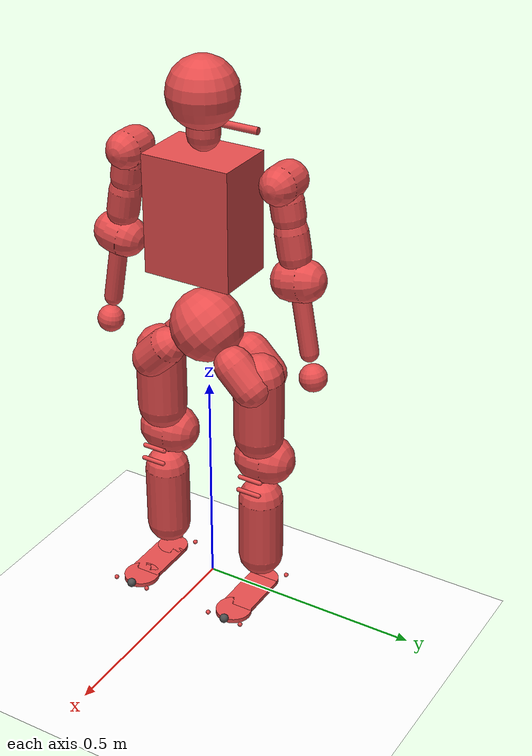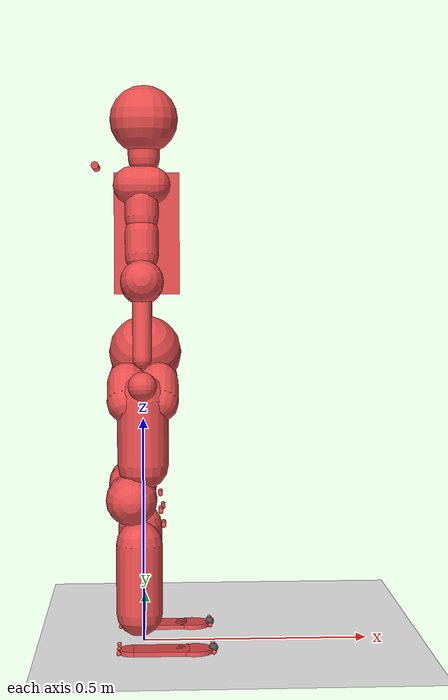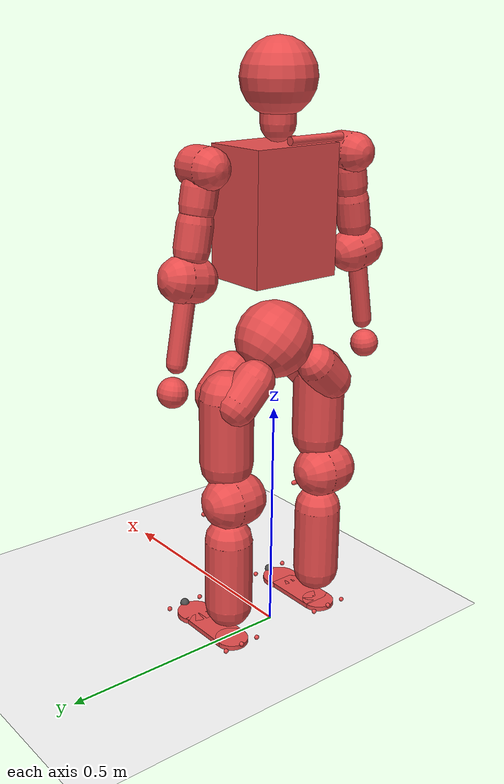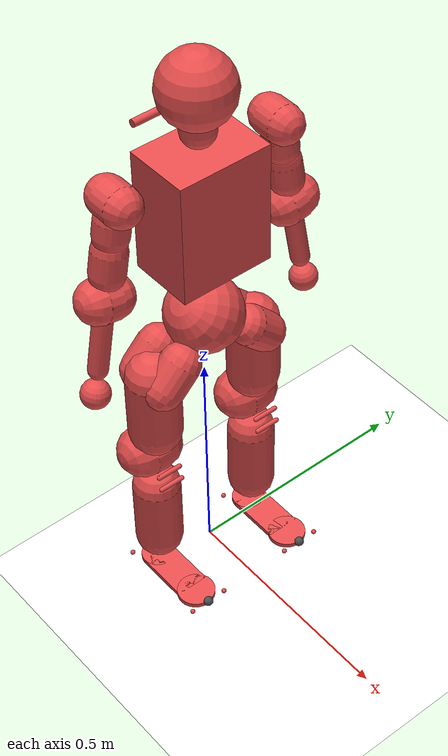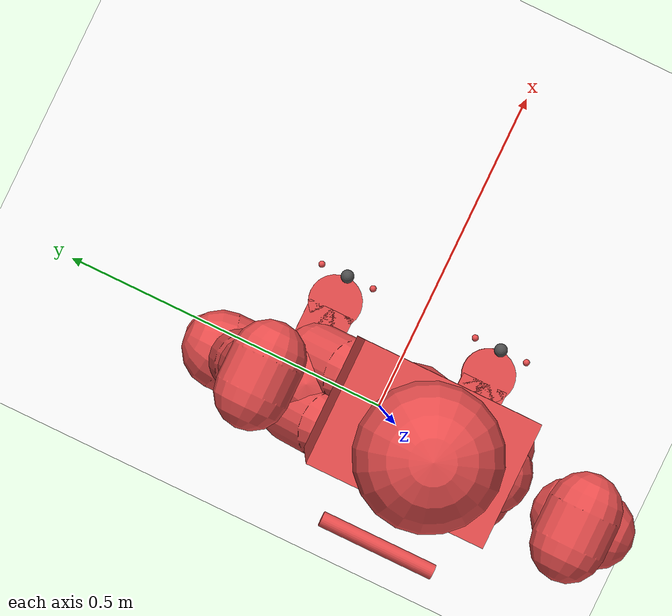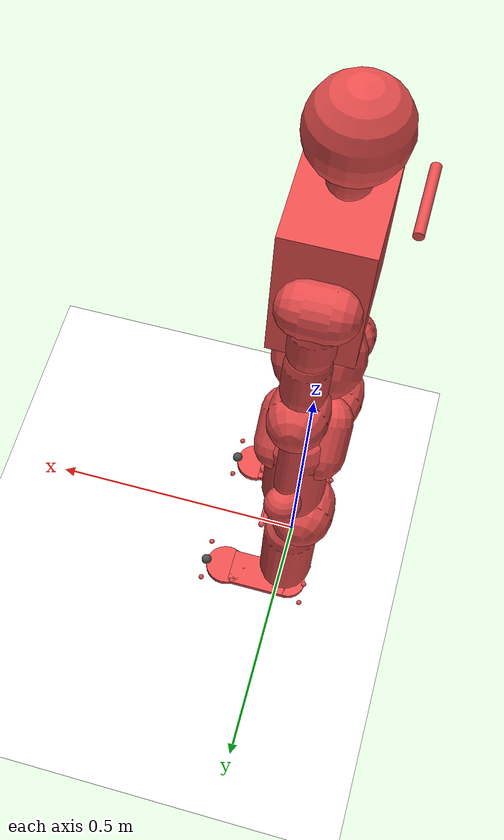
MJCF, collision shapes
<mujoco model="biped_s17">
  <compiler angle="radian" meshdir="../meshes/"/>
  <size njmax="500" nconmax="100" />
  <visual>
    <headlight diffuse="0.6 0.6 0.6" ambient="0.1 0.1 0.1" specular="0.9 0.9 0.9"/>
    <rgba haze="0.15 0.25 0.35 1"/>
    <global azimuth="-140" elevation="-20" offwidth="2080" offheight="1170"/>
  </visual>
  <default>
    <default class="collision">
      <geom material="collision" contype="1" conaffinity="1" user="2" rgba="0.9 0.3 0.3 0.2"/>
    </default>
  </default>
  <asset>
    <!-- background & ground (same style as unitree_g1) -->
    <texture type="skybox" builtin="gradient" rgb1="1 1 1" rgb2="1 1 1" width="800" height="800"/>
    <texture type="2d" name="groundplane" builtin="checker" mark="edge" rgb1="1 1 1" rgb2="1 1 1" markrgb="0 0 0"
      width="300" height="300"/>
    <material name="groundplane" texture="groundplane" texuniform="true" texrepeat="5 5" reflectance="0"/>
    <texture type="skybox" builtin="gradient" rgb1=".4 .5 .6" rgb2="0 0 0" width="100" height="100"/>
    <texture builtin="flat" height="1278" mark="cross" markrgb="1 1 1" name="texgeom" random="0.01"
             rgb1="0.8 0.6 0.4" rgb2="0.8 0.6 0.4" type="cube" width="127"/>
    <texture name="texplane" builtin="checker" height="512" width="512" rgb1=".2 .3 .4" rgb2=".1 .15 .2" type="2d" />
    <material name="MatPlane" reflectance="0.5" shininess="0.01" specular="0.1" texrepeat="1 1"
              texture="texplane" texuniform="true" />

    <!-- keep original grid material if needed elsewhere -->
    <texture name="grid" type="2d" builtin="checker" rgb1=".1 .2 .3" rgb2=".2 .3 .4" width="300" height="300"/>
    <material name="grid" texture="grid" texrepeat="8 8" reflectance=".1"/>
    <material name="collision"/>
    <mesh name="torso" file="torso.STL"/>
    <mesh name="waist" file="waist.STL"/>
    <mesh name="l_leg_pitch" file="l_leg_pitch.STL"/>
    <mesh name="l_leg_roll" file="l_leg_roll.STL"/>
    <mesh name="l_leg_yaw" file="l_leg_yaw.STL"/>
    <mesh name="l_knee" file="l_knee.STL"/>
    <mesh name="l_foot_pitch" file="l_foot_pitch.STL"/>
    <mesh name="l_foot_roll" file="l_foot_roll.STL"/>
    <mesh name="r_leg_pitch" file="r_leg_pitch.STL"/>
    <mesh name="r_leg_roll" file="r_leg_roll.STL"/>
    <mesh name="r_leg_yaw" file="r_leg_yaw.STL"/>
    <mesh name="r_knee" file="r_knee.STL"/>
    <mesh name="r_foot_pitch" file="r_foot_pitch.STL"/>
    <mesh name="r_foot_roll" file="r_foot_roll.STL"/>
    <mesh name="l_arm_pitch" file="l_arm_pitch.STL"/>
    <mesh name="l_arm_roll" file="l_arm_roll.STL"/>
    <mesh name="l_arm_yaw" file="l_arm_yaw.STL"/>
    <mesh name="l_forearm" file="l_forearm.STL"/>
    <mesh name="r_arm_pitch" file="r_arm_pitch.STL"/>
    <mesh name="r_arm_roll" file="r_arm_roll.STL"/>
    <mesh name="r_arm_yaw" file="r_arm_yaw.STL"/>
    <mesh name="r_forearm" file="r_forearm.STL"/>
    <mesh name="head_yaw" file="head_yaw.STL"/>
    <mesh name="head_pitch" file="head_pitch.STL"/>
  </asset>

  <worldbody>
    <!-- ground plane & light, same as unitree_g1 -->
    <geom name="floor" size="0 0 0.01" type="plane" material="groundplane" contype="1" conaffinity="0" priority="1"
          friction="0.6" condim="3"/>
    <light diffuse=".5 .5 .5" pos="-3 -3 5" dir="3 3 -5" castshadow="true"/>

    <body name="base_link" pos="0 0 0.77">
      <body name="site_left_shoulder" pos="0 0.181003 0.239926" />
      <body name="site_right_shoulder" pos="0 -0.181003 0.239926" />
      <body name="site_hips" pos="0.0 0.0 -0.221153" />
      <inertial pos="0.001 0 -0.122" quat="0.707107 0.707107 0 0" mass="4.8567" diaginertia="0.023 0.017 0.015"/>
      <joint name="dummy_to_base_link" type="free" limited="false" actuatorfrclimited="false"/>
      <geom type="mesh" contype="0" conaffinity="0" group="1" density="0" rgba="1 1 1 1" mesh="waist"/>
      <geom size="0.08" pos="0.005 0 -0.12" quat="0.923764 0.382961 0 0" class="collision"/>

      <body name="leg_l1_link" pos="0 0.124412 -0.221153">
          <inertial pos="-0.00063257 -0.0331968 0.0331968" quat="0.306976 0.638057 0.270546 0.652268" mass="0.625689" diaginertia="0.0019949 0.001909 0.00114913"/>
          <joint name="leg_l1_joint" pos="0 0 0" axis="0 0.707107 -0.707107" range="-3.228 2.44346" actuatorfrcrange="-150 150" armature="0.003" damping="0.2" frictionloss="0.0"/>
          <geom type="mesh" contype="0" conaffinity="0" group="1" density="0" rgba="1 1 1 1" mesh="l_leg_pitch"/>
          <geom size="0.042 0.03" pos="-0.035 -0.02 0.02" quat="0.923764 0.382961 0 0" type="capsule" class="collision"/>
          <geom size="0.042 0.03" pos="0.035 -0.02 0.02" quat="0.923764 0.382961 0 0" type="capsule" class="collision"/>
          <body name="leg_l2_link">
            <inertial pos="0.00998392 5.405e-05 -0.00920979" quat="0.998376 -0.00280518 0.0563977 0.00753194" mass="2.0316" diaginertia="0.00460461 0.00412288 0.00338322"/>
            <joint name="leg_l2_joint" pos="0 0 0" axis="1 0 0" range="-0.837758 2.40855" actuatorfrcrange="-150 150" armature="0.003" damping="0.2" frictionloss="0.0"/>
            <geom type="mesh" contype="0" conaffinity="0" group="1" density="0" rgba="1 1 1 1" mesh="l_leg_roll"/>
            <geom size="0.055 0.07" pos="0 0 -0.065" type="capsule" class="collision"/>
            <body name="leg_l3_link">
              <inertial pos="-0.0136391 -0.0013371 -0.157704" quat="0.680483 0.0858738 0.104775 0.720132" mass="3.38847" diaginertia="0.0151815 0.0146713 0.0049277"/>
              <joint name="leg_l3_joint" pos="0 0 0" axis="0 0 1" range="-1.7453 1.7453" actuatorfrcrange="-70 70" armature="0.003" damping="0.2" frictionloss="0.0"/>
              <geom type="mesh" contype="0" conaffinity="0" group="1" density="0" rgba="1 1 1 1" mesh="l_leg_yaw"/>
              <geom size="0.055 0.015" pos="-0.025 0 -0.21" quat="0.707388 0.706825 0 0" type="capsule" class="collision"/>
              <body name="leg_l4_link" pos="-0.03 0 -0.213">
                <inertial pos="0.022046 0.00442347 -0.114735" quat="0.834057 -0.0612911 0.0232855 0.547768" mass="2.61852" diaginertia="0.0123942 0.0119075 0.0029593"/>
                <joint name="leg_l4_joint" pos="0 0 0" axis="0 1 0" range="0.0 2.53073" actuatorfrcrange="-150 150" armature="0.003" damping="0.2" frictionloss="0.0"/>
                <geom type="mesh" contype="0" conaffinity="0" group="1" density="0" rgba="1 1 1 1" mesh="l_knee"/>
                <geom size="0.05 0.075" pos="0.021 0 -0.17" type="capsule" class="collision"/>
                <geom size="0.005 0.025" pos="0.068 0 -0.02" quat="0.707388 0.706825 0 0" type="capsule" class="collision"/>
                <geom size="0.005 0.025" pos="0.074 0 -0.05" quat="0.707388 0.706825 0 0" type="capsule" class="collision"/>
                <body name="leg_l5_link" pos="0.03 0 -0.276">
                  <inertial pos="-0.00317025 1.08e-06 -0.00652874" quat="0.698397 0.110643 0.110643 0.698397" mass="0.108543" diaginertia="2.278e-05 1.98845e-05 1.08355e-05"/>
                  <joint name="leg_l5_joint" pos="0 0 0" axis="0 1 0" range="-0.872665 0.523599" actuatorfrcrange="-74 74" armature="0.003" damping="0.2" frictionloss="0.0"/>
                  <geom type="mesh" contype="0" conaffinity="0" group="1" density="0" rgba="1 1 1 1" mesh="l_foot_pitch"/>
                  <body name="leg_l6_link" pos="0 0 -0.018">
                    <inertial pos="0.0238891 0.00010137 -0.0169705" quat="-0.00314074 0.7384 -0.00332222 0.674348" mass="0.436108" diaginertia="0.00107223 0.000979832 0.000192516"/>
                    <joint name="leg_l6_joint" pos="0 0 0" axis="1 0 0" range="-0.261799 0.261799" actuatorfrcrange="-74 74" armature="0.003" damping="0.2" frictionloss="0.0"/>
                    <geom type="mesh" contype="0" conaffinity="0" group="1" density="0" rgba="1 1 1 1" mesh="l_foot_roll"/>
                    <geom size="0.035 0.005" pos="-0.02 0 -0.035" type="cylinder" class="collision"/>
                    <geom size="0.04 0.005" pos="0.11 0 -0.035" type="cylinder" class="collision"/>
                    <geom size="0.06 0.035 0.005" pos="0.038 0 -0.035" type="box" class="collision"/>
                    <geom size="0.005" pos="0.1510 0.0415 -0.03" type="sphere" class="collision"/>
                    <geom size="0.005" pos="-0.0538 0.0415 -0.03" type="sphere" class="collision"/>
                    <geom size="0.005" pos="0.1510 -0.0415 -0.03" type="sphere" class="collision"/>
                    <geom size="0.005" pos="-0.0538 -0.0415 -0.03" type="sphere" class="collision"/>
                    <geom size="0.005" pos="0.1510 0 -0.03" type="sphere" class="collision"/>
                    <geom size="0.005" pos="-0.0538 0 -0.03" type="sphere" class="collision"/>

                    <!-- Front toe -->
                    <body name="toe_l6_front" pos="0.1510 0.0 -0.03">
                      <inertial pos="0 0 0" mass="0.01" diaginertia="1e-6 1e-6 1e-6"/>
                      <geom type="sphere" size="0.01" rgba="0.3 0.3 0.3 1" group="1"/>
                      <geom type="sphere" size="0.01" rgba="0.6 0.6 0.6 0.8" group="3" class="collision"/>
                    </body>

                  </body>
                </body>
              </body>
            </body>
          </body>
        </body>
        <body name="leg_r1_link" pos="0 -0.124412 -0.221153">
          <inertial pos="-0.00063257 0.0331968 0.0331968" quat="0.652268 0.270546 0.638057 0.306976" mass="0.625689" diaginertia="0.0019949 0.001909 0.00114913"/>
          <joint name="leg_r1_joint" pos="0 0 0" axis="0 -0.707107 -0.707107" range="-2.44346 3.228" actuatorfrcrange="-150 150" armature="0.003" damping="0.2" frictionloss="0.0"/>
          <geom type="mesh" contype="0" conaffinity="0" group="1" density="0" rgba="1 1 1 1" mesh="r_leg_pitch"/>
          <geom size="0.042 0.03" pos="-0.035 0.02 0.02" quat="0.923764 -0.382961 0 0" type="capsule" class="collision"/>
          <geom size="0.042 0.03" pos="0.035 0.02 0.02" quat="0.923764 -0.382961 0 0" type="capsule" class="collision"/>
          <body name="leg_r2_link">
            <inertial pos="0.00998392 -5.405e-05 -0.00920979" quat="0.998376 0.00280518 0.0563977 -0.00753194" mass="2.0316" diaginertia="0.00460461 0.00412288 0.00338322"/>
            <joint name="leg_r2_joint" pos="0 0 0" axis="1 0 0" range="-2.40855 0.837758" actuatorfrcrange="-150 150" armature="0.003" damping="0.2" frictionloss="0.0"/>
            <geom type="mesh" contype="0" conaffinity="0" group="1" density="0" rgba="1 1 1 1" mesh="r_leg_roll"/>
            <geom size="0.055 0.07" pos="0 0 -0.065" type="capsule" class="collision"/>
            <body name="leg_r3_link">
              <inertial pos="-0.0136391 0.0013371 -0.157704" quat="0.720132 0.104775 0.0858738 0.680483" mass="3.38847" diaginertia="0.0151815 0.0146713 0.0049277"/>
              <joint name="leg_r3_joint" pos="0 0 0" axis="0 0 1" range="-1.7453 1.7453" actuatorfrcrange="-70 70" armature="0.003" damping="0.2" frictionloss="0.0"/>
              <geom type="mesh" contype="0" conaffinity="0" group="1" density="0" rgba="1 1 1 1" mesh="r_leg_yaw"/>
              <geom size="0.055 0.015" pos="-0.025 0 -0.21" quat="0.707388 0.706825 0 0" type="capsule" class="collision"/>
              <body name="leg_r4_link" pos="-0.03 0 -0.213">
                <inertial pos="0.022046 -0.00442347 -0.114735" quat="0.547768 0.0232855 -0.0612911 0.834057" mass="2.61852" diaginertia="0.0123942 0.0119075 0.0029593"/>
                <joint name="leg_r4_joint" pos="0 0 0" axis="0 1 0" range="0.0 2.53073" actuatorfrcrange="-150 150" armature="0.003" damping="0.2" frictionloss="0.0"/>
                <geom type="mesh" contype="0" conaffinity="0" group="1" density="0" rgba="1 1 1 1" mesh="r_knee"/>
                <geom size="0.05 0.075" pos="0.021 0 -0.17" type="capsule" class="collision"/>
                <geom size="0.005 0.025" pos="0.068 0 -0.02" quat="0.707388 0.706825 0 0" type="capsule" class="collision"/>
                <geom size="0.005 0.025" pos="0.074 0 -0.05" quat="0.707388 0.706825 0 0" type="capsule" class="collision"/>
                <body name="leg_r5_link" pos="0.03 0 -0.276">
                  <inertial pos="-0.00317025 1.08e-06 -0.00652874" quat="0.698397 0.110643 0.110643 0.698397" mass="0.108543" diaginertia="2.278e-05 1.98845e-05 1.08355e-05"/>
                  <joint name="leg_r5_joint" pos="0 0 0" axis="0 1 0" range="-0.872665 0.523599" actuatorfrcrange="-74 74" armature="0.003" damping="0.2" frictionloss="0.0"/>
                  <geom type="mesh" contype="0" conaffinity="0" group="1" density="0" rgba="1 1 1 1" mesh="r_foot_pitch"/>
                  <body name="leg_r6_link" pos="0 0 -0.018">
                    <inertial pos="0.0238891 -0.00010137 -0.0169705" quat="0.00314074 0.7384 0.00332222 0.674348" mass="0.436108" diaginertia="0.00107223 0.000979832 0.000192516"/>
                    <joint name="leg_r6_joint" pos="0 0 0" axis="1 0 0" range="-0.261799 0.261799" actuatorfrcrange="-74 74" armature="0.003" damping="0.2" frictionloss="0.0"/>
                    <geom type="mesh" contype="0" conaffinity="0" group="1" density="0" rgba="1 1 1 1" mesh="r_foot_roll"/>
                    <geom size="0.035 0.005" pos="-0.02 0 -0.035" type="cylinder" class="collision"/>
                    <geom size="0.04 0.005" pos="0.11 0 -0.035" type="cylinder" class="collision"/>
                    <geom size="0.06 0.035 0.005" pos="0.038 0 -0.035" type="box" class="collision"/>
                    <geom size="0.005" pos="0.1510 0.0415 -0.03" type="sphere" class="collision"/>
                    <geom size="0.005" pos="-0.0538 0.0415 -0.03" type="sphere" class="collision"/>
                    <geom size="0.005" pos="0.1510 -0.0415 -0.03" type="sphere" class="collision"/>
                    <geom size="0.005" pos="-0.0538 -0.0415 -0.03" type="sphere" class="collision"/>
                    <geom size="0.005" pos="0.1510 0 -0.03" type="sphere" class="collision"/>
                    <geom size="0.005" pos="-0.0538 0 -0.03" type="sphere" class="collision"/>

                    <!-- Front toe -->
                    <body name="toe_r6_front" pos="0.1510 0.0 -0.03">
                      <inertial pos="0 0 0" mass="0.01" diaginertia="1e-6 1e-6 1e-6"/>
                      <geom type="sphere" size="0.01" rgba="0.3 0.3 0.3 1" group="1"/>
                      <geom type="sphere" size="0.01" rgba="0.6 0.6 0.6 0.8" group="3" class="collision"/>
                    </body>

                  </body>
                </body>
              </body>
            </body>
          </body>
        </body>
      <body name="waist_yaw_link">
        <site name="imu" pos="0 0 0" />
        <inertial pos="-0.006 0 0.145" mass="8.73" diaginertia="0.104 0.084 0.05"/>
        <joint name="waist_yaw_joint" pos="0 0 0" axis="0 0 1" range="-2.61799 2.61799" actuatorfrcrange="-50 50" armature="0.003" damping="0.2" frictionloss="0.0"/>
        <geom type="mesh" contype="0" conaffinity="0" group="1" density="0" rgba="1 1 1 1" mesh="torso"/>
        <geom size="0.07 0.1 0.13" pos="0.01 0 0.14" type="box" class="collision"/>
        <geom size="0.008 0.0625" pos="-0.102 0 0.288" quat="0.707105 0.707108 0 0" type="cylinder" class="collision"/>
        <body name="zarm_l1_link" pos="0 0.181003 0.239926">
          <inertial pos="0.0185243 -0.00307832 -6.089e-05" quat="-0.0876185 0.702161 0.0796388 0.702105" mass="0.803289" diaginertia="0.000935653 0.000838935 0.000645033"/>
          <joint name="zarm_l1_joint" pos="0 0 0" axis="0 1 0" range="-3.14159 2.0944" actuatorfrcrange="-14.1 14.1" armature="0.003" damping="0.2" frictionloss="0.0"/>
          <geom type="mesh" contype="0" conaffinity="0" group="1" density="0" rgba="1 1 1 1" mesh="l_arm_pitch"/>
          <geom size="0.04 0.02" quat="0.707105 0 0.707108 0" type="capsule" class="collision"/>
          <body name="zarm_l2_link" quat="0.996195 0.0871543 0 0">
            <inertial pos="0.00217668 0.0057468 -0.0325868" quat="0.614053 0.350627 0.350627 0.614053" mass="0.323607" diaginertia="0.0006811 0.000512452 0.000453988"/>
            <joint name="zarm_l2_joint" pos="0 0 0" axis="1 0 0" range="-0.52 3.316" actuatorfrcrange="-37 37" armature="0.003" damping="0.2" frictionloss="0.0"/>
            <geom type="mesh" contype="0" conaffinity="0" group="1" density="0" rgba="1 1 1 1" mesh="l_arm_roll"/>
            <geom size="0.035 0.0175" pos="0 0 -0.0525" type="capsule" class="collision"/>
            <body name="zarm_l3_link">
              <inertial pos="-6.747e-05 -0.0101641 -0.150418" quat="0.996844 -0.0793864 -0.000157022 0.000272857" mass="1.46579" diaginertia="0.0069655 0.00670029 0.00121989"/>
              <joint name="zarm_l3_joint" pos="0 0 0" axis="0 0 1" range="-1.5708 1.5708" actuatorfrcrange="-37 37" armature="0.003" damping="0.2" frictionloss="0.0"/>
              <geom type="mesh" contype="0" conaffinity="0" group="1" density="0" rgba="1 1 1 1" mesh="l_arm_yaw"/>
              <geom size="0.035 0.025" pos="0 0 -0.125" type="capsule" class="collision"/>
              <body name="zarm_l4_link" pos="0 0 -0.20533">
                <inertial pos="-0.000812081 -0.0133003 -0.090014" quat="0.999848 0.0160124 -0.00302648 0.00615008" mass="0.421893" diaginertia="0.00336866 0.00316973 0.000491717"/>
                <joint name="zarm_l4_joint" pos="0 0 0" axis="0 1 0" range="-2.26893 0.08726" actuatorfrcrange="-37 37" armature="0.003" damping="0.2" frictionloss="0.0"/>
                <geom type="mesh" contype="0" conaffinity="0" group="1" density="0" rgba="1 1 1 1" mesh="l_forearm"/>
                <geom size="0.045 0.015" quat="0.707388 0.706825 0 0" type="capsule" class="collision"/>
                <geom size="0.02 0.06" pos="0 0 -0.1" type="capsule" class="collision"/>
                <geom size="0.03" pos="0 0 -0.2175" class="collision" friction="0.0001 0.005 0.0001"/>
                <geom size="0.005" pos="0 0 -0.2175" type="sphere" class="collision"/>
              </body>
            </body>
          </body>
        </body>
        <body name="zarm_r1_link" pos="0 -0.181003 0.239926">
          <inertial pos="0.0185243 0.00307832 -6.089e-05" quat="0.0876185 0.702161 -0.0796388 0.702105" mass="0.803289" diaginertia="0.000935653 0.000838935 0.000645033"/>
          <joint name="zarm_r1_joint" pos="0 0 0" axis="0 1 0" range="-3.14159 2.0944" actuatorfrcrange="-14.1 14.1" armature="0.003" damping="0.2" frictionloss="0.0"/>
          <geom type="mesh" contype="0" conaffinity="0" group="1" density="0" rgba="1 1 1 1" mesh="r_arm_pitch"/>
          <geom size="0.04 0.02" quat="0.707105 0 0.707108 0" type="capsule" class="collision"/>
          <body name="zarm_r2_link" quat="0.996195 -0.0871543 0 0">
            <inertial pos="0.00217668 -0.0057468 -0.0325868" quat="0.614053 0.350627 0.350627 0.614053" mass="0.323607" diaginertia="0.0006811 0.000512452 0.000453988"/>
            <joint name="zarm_r2_joint" pos="0 0 0" axis="1 0 0" range="-3.3161 0.52" actuatorfrcrange="-37 37" armature="0.003" damping="0.2" frictionloss="0.0"/>
            <geom type="mesh" contype="0" conaffinity="0" group="1" density="0" rgba="1 1 1 1" mesh="r_arm_roll"/>
            <geom size="0.035 0.0175" pos="0 0 -0.0525" type="capsule" class="collision"/>
            <body name="zarm_r3_link">
              <inertial pos="-6.747e-05 0.0101641 -0.150418" quat="0.996844 0.0793864 -0.000157022 -0.000272857" mass="1.46579" diaginertia="0.0069655 0.00670029 0.00121989"/>
              <joint name="zarm_r3_joint" pos="0 0 0" axis="0 0 1" range="-1.5708 1.5708" actuatorfrcrange="-37 37" armature="0.003" damping="0.2" frictionloss="0.0"/>
              <geom type="mesh" contype="0" conaffinity="0" group="1" density="0" rgba="1 1 1 1" mesh="r_arm_yaw"/>
              <geom size="0.035 0.025" pos="0 0 -0.125" type="capsule" class="collision"/>
              <body name="zarm_r4_link" pos="0 0 -0.20533">
                <inertial pos="-0.000812081 0.0133003 -0.090014" quat="0.999848 -0.0160124 -0.00302648 -0.00615008" mass="0.421893" diaginertia="0.00336866 0.00316973 0.000491717"/>
                <joint name="zarm_r4_joint" pos="0 0 0" axis="0 1 0" range="-2.26893 0.08726" actuatorfrcrange="-37 37" armature="0.003" damping="0.2" frictionloss="0.0"/>
                <geom type="mesh" contype="0" conaffinity="0" group="1" density="0" rgba="1 1 1 1" mesh="r_forearm"/>
                <geom size="0.045 0.015" quat="0.707388 0.706825 0 0" type="capsule" class="collision"/>
                <geom size="0.02 0.06" pos="0 0 -0.1" type="capsule" class="collision"/>
                <geom size="0.03" pos="0 0 -0.2175" class="collision" friction="0.0001 0.005 0.0001"/>
                <geom size="0.005" pos="0 0 -0.2175" type="sphere" class="collision"/>
              </body>
            </body>
          </body>
        </body>
        <body name="zhead_1_link" pos="0.004 0 0.35618">
          <inertial pos="-0.00081546 0.00754474 0.0168097" mass="1.03078" diaginertia="0.002156 0.00189151 0.00071659"/>
          <joint name="zhead_1_joint" pos="0 0 0" axis="0 0 1" range="-1.5708 1.5708" actuatorfrcrange="-1.5 1.5" armature="0.003" damping="0.2" frictionloss="0.0"/>
          <geom type="mesh" contype="0" conaffinity="0" group="1" density="0" rgba="1 1 1 1" mesh="head_yaw"/>
          <geom size="0.035 0.05" type="capsule" class="collision"/>
          <body name="zhead_2_link">
            <inertial pos="0.014664 0.00044662 0.0574289" quat="0 0.707107 0 0.707107" mass="0.33655" diaginertia="0.00150717 0.00141557 0.00119625"/>
            <joint name="zhead_2_joint" pos="0 0 0" axis="0 1 0" range="-0.349066 0.785398" actuatorfrcrange="-12 12" armature="0.003" damping="0.2" frictionloss="0.0"/>
            <geom type="mesh" contype="0" conaffinity="0" group="1" density="0" rgba="1 1 1 1" mesh="head_pitch"/>
            <geom size="0.075" pos="0 0 0.035" class="collision"/>
          </body>
        </body>
      </body>
    </body>
  </worldbody>
  <actuator>
    <motor gear="1" joint="leg_l1_joint" name="leg_l1_joint_motor" ctrllimited="true" ctrlrange="-150 150" />
    <motor gear="1" joint="leg_l2_joint" name="leg_l2_joint_motor" ctrllimited="true" ctrlrange="-150 150" />
    <motor gear="1" joint="leg_l3_joint" name="leg_l3_joint_motor" ctrllimited="true" ctrlrange="-70 70" />
    <motor gear="1" joint="leg_l4_joint" name="leg_l4_joint_motor" ctrllimited="true" ctrlrange="-150 150" />
    <motor gear="1" joint="leg_l5_joint" name="leg_l5_joint_motor" ctrllimited="true" ctrlrange="-74 74" />
    <motor gear="1" joint="leg_l6_joint" name="leg_l6_joint_motor" ctrllimited="true" ctrlrange="-74 74" />
    <motor gear="1" joint="leg_r1_joint" name="leg_r1_joint_motor" ctrllimited="true" ctrlrange="-150 150" />
    <motor gear="1" joint="leg_r2_joint" name="leg_r2_joint_motor" ctrllimited="true" ctrlrange="-150 150" />
    <motor gear="1" joint="leg_r3_joint" name="leg_r3_joint_motor" ctrllimited="true" ctrlrange="-70 70" />
    <motor gear="1" joint="leg_r4_joint" name="leg_r4_joint_motor" ctrllimited="true" ctrlrange="-150 150" />
    <motor gear="1" joint="leg_r5_joint" name="leg_r5_joint_motor" ctrllimited="true" ctrlrange="-74 74" />
    <motor gear="1" joint="leg_r6_joint" name="leg_r6_joint_motor" ctrllimited="true" ctrlrange="-74 74" />
    <motor gear="1" joint="waist_yaw_joint" name="waist_yaw_joint_motor" ctrllimited="true" ctrlrange="-80 80" />
    <motor gear="1" joint="zarm_l1_joint" name="zarm_l1_joint_motor" ctrllimited="true" ctrlrange="-14.1 14.1" />
    <motor gear="1" joint="zarm_l2_joint" name="zarm_l2_joint_motor" ctrllimited="true" ctrlrange="-37 37" />
    <motor gear="1" joint="zarm_l3_joint" name="zarm_l3_joint_motor" ctrllimited="true" ctrlrange="-37 37" />
    <motor gear="1" joint="zarm_l4_joint" name="zarm_l4_joint_motor" ctrllimited="true" ctrlrange="-37 37" />
    <motor gear="1" joint="zarm_r1_joint" name="zarm_r1_joint_motor" ctrllimited="true" ctrlrange="-14.1 14.1" />
    <motor gear="1" joint="zarm_r2_joint" name="zarm_r2_joint_motor" ctrllimited="true" ctrlrange="-37 37" />
    <motor gear="1" joint="zarm_r3_joint" name="zarm_r3_joint_motor" ctrllimited="true" ctrlrange="-37 37" />
    <motor gear="1" joint="zarm_r4_joint" name="zarm_r4_joint_motor" ctrllimited="true" ctrlrange="-37 37" />
    <motor gear="1" joint="zhead_1_joint" name="zhead_1_joint_motor" ctrllimited="true" ctrlrange="-14.1 14.1" />
    <motor gear="1" joint="zhead_2_joint" name="zhead_2_joint_motor" ctrllimited="true" ctrlrange="-14.1 14.1" />
  </actuator>
  <sensor>
    <accelerometer name="BodyAcc" site="imu" />
    <velocimeter name="BodyVel" site="imu" />
    <gyro name="BodyGyro" site="imu" />
    <framepos name="BodyPos" objtype="site" objname="imu" />
    <framequat name="BodyQuat" objtype="site" objname="imu" />
    <jointpos name="leg_l1_joint_pos" joint="leg_l1_joint" />
    <jointpos name="leg_l2_joint_pos" joint="leg_l2_joint" />
    <jointpos name="leg_l3_joint_pos" joint="leg_l3_joint" />
    <jointpos name="leg_l4_joint_pos" joint="leg_l4_joint" />
    <jointpos name="leg_l5_joint_pos" joint="leg_l5_joint" />
    <jointpos name="leg_l6_joint_pos" joint="leg_l6_joint" />
    <jointpos name="leg_r1_joint_pos" joint="leg_r1_joint" />
    <jointpos name="leg_r2_joint_pos" joint="leg_r2_joint" />
    <jointpos name="leg_r3_joint_pos" joint="leg_r3_joint" />
    <jointpos name="leg_r4_joint_pos" joint="leg_r4_joint" />
    <jointpos name="leg_r5_joint_pos" joint="leg_r5_joint" />
    <jointpos name="leg_r6_joint_pos" joint="leg_r6_joint" />
    <jointpos name="waist_yaw_joint_pos" joint="waist_yaw_joint" />
    <jointpos name="zarm_l1_joint_pos" joint="zarm_l1_joint" />
    <jointpos name="zarm_l2_joint_pos" joint="zarm_l2_joint" />
    <jointpos name="zarm_l3_joint_pos" joint="zarm_l3_joint" />
    <jointpos name="zarm_l4_joint_pos" joint="zarm_l4_joint" />
    <jointpos name="zarm_r1_joint_pos" joint="zarm_r1_joint" />
    <jointpos name="zarm_r2_joint_pos" joint="zarm_r2_joint" />
    <jointpos name="zarm_r3_joint_pos" joint="zarm_r3_joint" />
    <jointpos name="zarm_r4_joint_pos" joint="zarm_r4_joint" />
    <jointpos name="zhead_1_joint_pos" joint="zhead_1_joint" />
    <jointpos name="zhead_2_joint_pos" joint="zhead_2_joint" />
    <jointvel name="leg_l1_joint_vel" joint="leg_l1_joint" />
    <jointvel name="leg_l2_joint_vel" joint="leg_l2_joint" />
    <jointvel name="leg_l3_joint_vel" joint="leg_l3_joint" />
    <jointvel name="leg_l4_joint_vel" joint="leg_l4_joint" />
    <jointvel name="leg_l5_joint_vel" joint="leg_l5_joint" />
    <jointvel name="leg_l6_joint_vel" joint="leg_l6_joint" />
    <jointvel name="leg_r1_joint_vel" joint="leg_r1_joint" />
    <jointvel name="leg_r2_joint_vel" joint="leg_r2_joint" />
    <jointvel name="leg_r3_joint_vel" joint="leg_r3_joint" />
    <jointvel name="leg_r4_joint_vel" joint="leg_r4_joint" />
    <jointvel name="leg_r5_joint_vel" joint="leg_r5_joint" />
    <jointvel name="leg_r6_joint_vel" joint="leg_r6_joint" />
    <jointvel name="waist_yaw_joint_vel" joint="waist_yaw_joint" />
    <jointvel name="zarm_l1_joint_vel" joint="zarm_l1_joint" />
    <jointvel name="zarm_l2_joint_vel" joint="zarm_l2_joint" />
    <jointvel name="zarm_l3_joint_vel" joint="zarm_l3_joint" />
    <jointvel name="zarm_l4_joint_vel" joint="zarm_l4_joint" />
    <jointvel name="zarm_r1_joint_vel" joint="zarm_r1_joint" />
    <jointvel name="zarm_r2_joint_vel" joint="zarm_r2_joint" />
    <jointvel name="zarm_r3_joint_vel" joint="zarm_r3_joint" />
    <jointvel name="zarm_r4_joint_vel" joint="zarm_r4_joint" />
    <jointvel name="zhead_1_joint_vel" joint="zhead_1_joint" />
    <jointvel name="zhead_2_joint_vel" joint="zhead_2_joint" />
  </sensor>
</mujoco>
